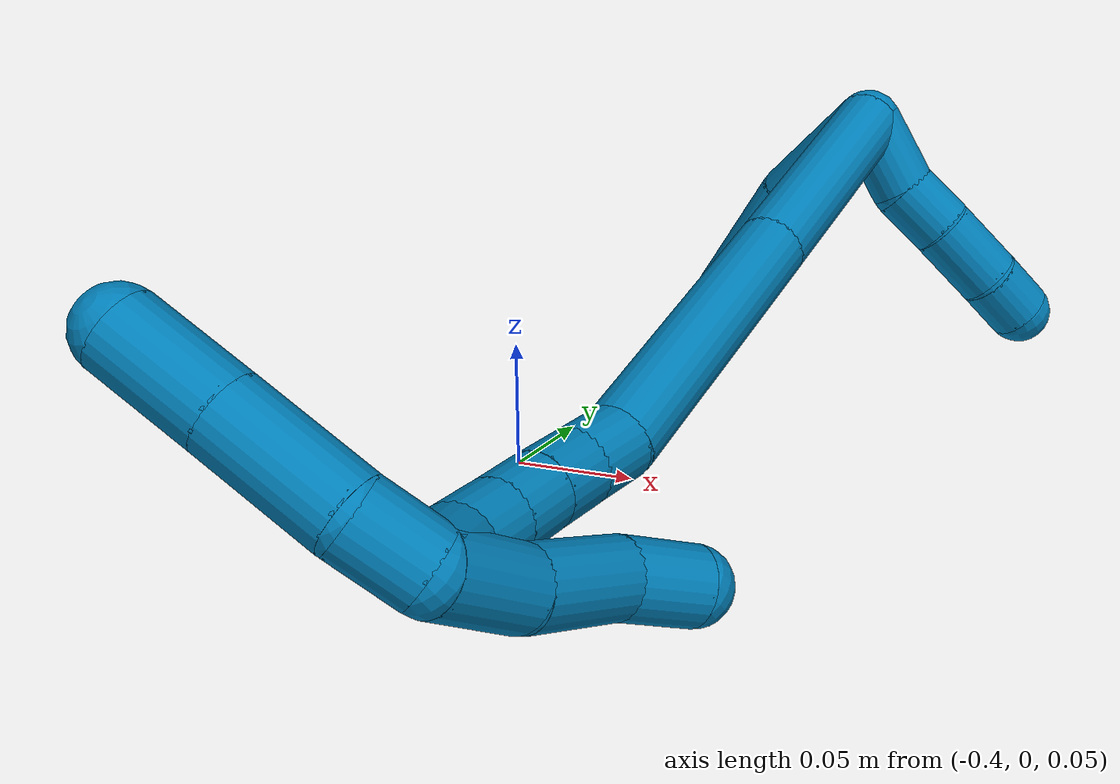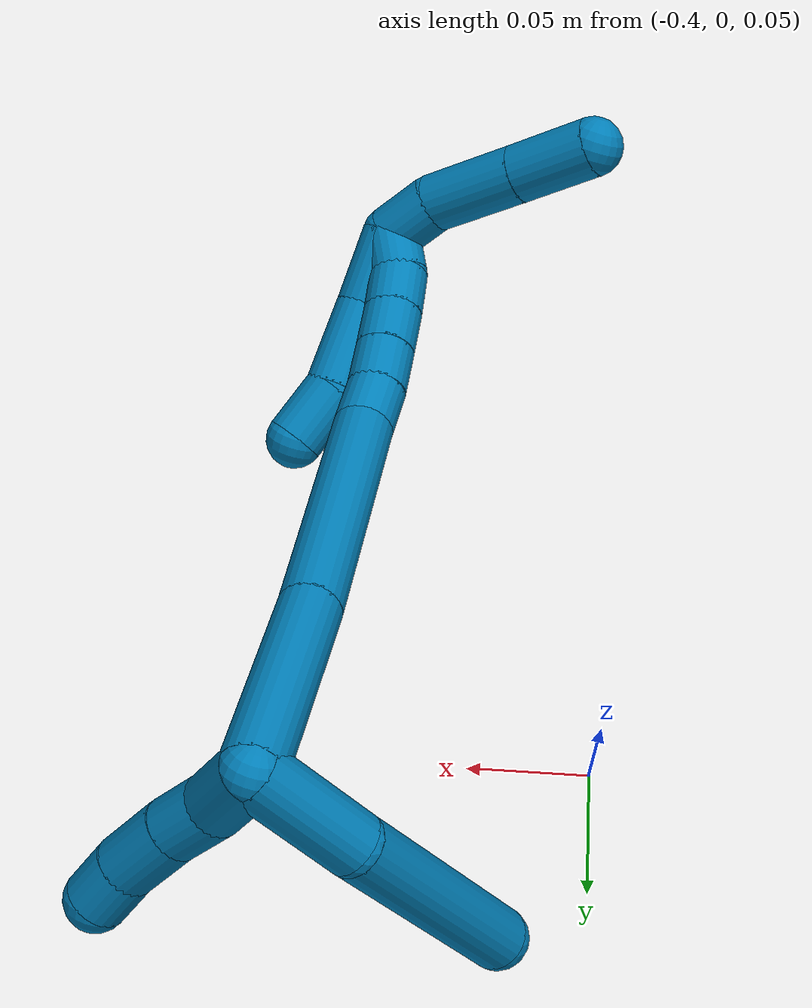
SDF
<sdf version="1.7">
 <world name="default">
  <model name="9">
   <static>0</static>
   <link name="9">
    <collision name="collision-cylinder-e_1_2_8">
     <pose>-0.019266 0.010977 -0.011729 -2.38932 -0.87576 1.74013</pose>
     <geometry><cylinder><radius>0.0125</radius><length>0.050169</length></cylinder></geometry>
     <surface>
      <friction><ode><mu>1.16</mu><mu2>1.16</mu2><slip1>0</slip1><slip2>0</slip2></ode></friction>
      <contact><ode><kp>1e+06</kp><kd>1</kd><max_vel>0</max_vel><min_depth>0.001</min_depth></ode></contact>
     </surface>
    </collision>
    <visual name="visual-cylinder-e_1_2_8">
     <pose>-0.019266 0.010977 -0.011729 -2.38932 -0.87576 1.74013</pose>
     <geometry><cylinder><radius>0.0125</radius><length>0.050169</length></cylinder></geometry>
     <material><ambient>0 0.490196 0.709804 1</ambient></material>
    </visual>
    <collision name="collision-cylinder-e_2_8_6">
     <pose>-0.080796 0.029187 -0.049011 -2.86574 -1.0098 2.64946</pose>
     <geometry><cylinder><radius>0.0125</radius><length>0.099831</length></cylinder></geometry>
     <surface>
      <friction><ode><mu>1.16</mu><mu2>1.16</mu2><slip1>0</slip1><slip2>0</slip2></ode></friction>
      <contact><ode><kp>1e+06</kp><kd>1</kd><max_vel>0</max_vel><min_depth>0.001</min_depth></ode></contact>
     </surface>
    </collision>
    <visual name="visual-cylinder-e_2_8_6">
     <pose>-0.080796 0.029187 -0.049011 -2.86574 -1.0098 2.64946</pose>
     <geometry><cylinder><radius>0.0125</radius><length>0.099831</length></cylinder></geometry>
     <material><ambient>0 0.490196 0.709804 1</ambient></material>
    </visual>
    <collision name="collision-cylinder-e_1_2_9">
     <pose>-0.002313 -0.008014 -0.012148 2.55842 -0.157627 -0.514604</pose>
     <geometry><cylinder><radius>0.0125</radius><length>0.029471</length></cylinder></geometry>
     <surface>
      <friction><ode><mu>1.16</mu><mu2>1.16</mu2><slip1>0</slip1><slip2>0</slip2></ode></friction>
      <contact><ode><kp>1e+06</kp><kd>1</kd><max_vel>0</max_vel><min_depth>0.001</min_depth></ode></contact>
     </surface>
    </collision>
    <visual name="visual-cylinder-e_1_2_9">
     <pose>-0.002313 -0.008014 -0.012148 2.55842 -0.157627 -0.514604</pose>
     <geometry><cylinder><radius>0.0125</radius><length>0.029471</length></cylinder></geometry>
     <material><ambient>0 0.490196 0.709804 1</ambient></material>
    </visual>
    <collision name="collision-cylinder-e_2_9_10">
     <pose>-0.003151 -0.022283 -0.033145 2.52633 0.135285 0.420163</pose>
     <geometry><cylinder><radius>0.0125</radius><length>0.021875</length></cylinder></geometry>
     <surface>
      <friction><ode><mu>1.16</mu><mu2>1.16</mu2><slip1>0</slip1><slip2>0</slip2></ode></friction>
      <contact><ode><kp>1e+06</kp><kd>1</kd><max_vel>0</max_vel><min_depth>0.001</min_depth></ode></contact>
     </surface>
    </collision>
    <visual name="visual-cylinder-e_2_9_10">
     <pose>-0.003151 -0.022283 -0.033145 2.52633 0.135285 0.420163</pose>
     <geometry><cylinder><radius>0.0125</radius><length>0.021875</length></cylinder></geometry>
     <material><ambient>0 0.490196 0.709804 1</ambient></material>
    </visual>
    <collision name="collision-cylinder-e_3_10_11">
     <pose>1.3e-05 -0.035521 -0.05419 2.62154 0.119639 0.442838</pose>
     <geometry><cylinder><radius>0.0125</radius><length>0.028307</length></cylinder></geometry>
     <surface>
      <friction><ode><mu>1.16</mu><mu2>1.16</mu2><slip1>0</slip1><slip2>0</slip2></ode></friction>
      <contact><ode><kp>1e+06</kp><kd>1</kd><max_vel>0</max_vel><min_depth>0.001</min_depth></ode></contact>
     </surface>
    </collision>
    <visual name="visual-cylinder-e_3_10_11">
     <pose>1.3e-05 -0.035521 -0.05419 2.62154 0.119639 0.442838</pose>
     <geometry><cylinder><radius>0.0125</radius><length>0.028307</length></cylinder></geometry>
     <material><ambient>0 0.490196 0.709804 1</ambient></material>
    </visual>
    <collision name="collision-cylinder-e_4_11_5">
     <pose>0.002957 -0.04615 -0.075799 2.77214 0.123568 0.639432</pose>
     <geometry><cylinder><radius>0.0125</radius><length>0.020347</length></cylinder></geometry>
     <surface>
      <friction><ode><mu>1.16</mu><mu2>1.16</mu2><slip1>0</slip1><slip2>0</slip2></ode></friction>
      <contact><ode><kp>1e+06</kp><kd>1</kd><max_vel>0</max_vel><min_depth>0.001</min_depth></ode></contact>
     </surface>
    </collision>
    <visual name="visual-cylinder-e_4_11_5">
     <pose>0.002957 -0.04615 -0.075799 2.77214 0.123568 0.639432</pose>
     <geometry><cylinder><radius>0.0125</radius><length>0.020347</length></cylinder></geometry>
     <material><ambient>0 0.490196 0.709804 1</ambient></material>
    </visual>
    <collision name="collision-cylinder-e_1_2_12">
     <pose>-0.032289 -0.026379 0.013438 1.09965 -0.828733 -0.526598</pose>
     <geometry><cylinder><radius>0.0125</radius><length>0.087613</length></cylinder></geometry>
     <surface>
      <friction><ode><mu>1.16</mu><mu2>1.16</mu2><slip1>0</slip1><slip2>0</slip2></ode></friction>
      <contact><ode><kp>1e+06</kp><kd>1</kd><max_vel>0</max_vel><min_depth>0.001</min_depth></ode></contact>
     </surface>
    </collision>
    <visual name="visual-cylinder-e_1_2_12">
     <pose>-0.032289 -0.026379 0.013438 1.09965 -0.828733 -0.526598</pose>
     <geometry><cylinder><radius>0.0125</radius><length>0.087613</length></cylinder></geometry>
     <material><ambient>0 0.490196 0.709804 1</ambient></material>
    </visual>
    <collision name="collision-cylinder-e_2_12_13">
     <pose>-0.103836 -0.087665 0.046062 1.06822 -0.778154 -0.475779</pose>
     <geometry><cylinder><radius>0.0125</radius><length>0.111855</length></cylinder></geometry>
     <surface>
      <friction><ode><mu>1.16</mu><mu2>1.16</mu2><slip1>0</slip1><slip2>0</slip2></ode></friction>
      <contact><ode><kp>1e+06</kp><kd>1</kd><max_vel>0</max_vel><min_depth>0.001</min_depth></ode></contact>
     </surface>
    </collision>
    <visual name="visual-cylinder-e_2_12_13">
     <pose>-0.103836 -0.087665 0.046062 1.06822 -0.778154 -0.475779</pose>
     <geometry><cylinder><radius>0.0125</radius><length>0.111855</length></cylinder></geometry>
     <material><ambient>0 0.490196 0.709804 1</ambient></material>
    </visual>
    <collision name="collision-cylinder-e_3_13_14">
     <pose>-0.149512 -0.127787 0.071317 0.709916 -0.675894 -0.25906</pose>
     <geometry><cylinder><radius>0.0125</radius><length>0.020513</length></cylinder></geometry>
     <surface>
      <friction><ode><mu>1.16</mu><mu2>1.16</mu2><slip1>0</slip1><slip2>0</slip2></ode></friction>
      <contact><ode><kp>1e+06</kp><kd>1</kd><max_vel>0</max_vel><min_depth>0.001</min_depth></ode></contact>
     </surface>
    </collision>
    <visual name="visual-cylinder-e_3_13_14">
     <pose>-0.149512 -0.127787 0.071317 0.709916 -0.675894 -0.25906</pose>
     <geometry><cylinder><radius>0.0125</radius><length>0.020513</length></cylinder></geometry>
     <material><ambient>0 0.490196 0.709804 1</ambient></material>
    </visual>
    <collision name="collision-cylinder-e_4_14_15">
     <pose>-0.161333 -0.138645 0.083639 0.734132 -0.570567 -0.224581</pose>
     <geometry><cylinder><radius>0.0125</radius><length>0.020016</length></cylinder></geometry>
     <surface>
      <friction><ode><mu>1.16</mu><mu2>1.16</mu2><slip1>0</slip1><slip2>0</slip2></ode></friction>
      <contact><ode><kp>1e+06</kp><kd>1</kd><max_vel>0</max_vel><min_depth>0.001</min_depth></ode></contact>
     </surface>
    </collision>
    <visual name="visual-cylinder-e_4_14_15">
     <pose>-0.161333 -0.138645 0.083639 0.734132 -0.570567 -0.224581</pose>
     <geometry><cylinder><radius>0.0125</radius><length>0.020016</length></cylinder></geometry>
     <material><ambient>0 0.490196 0.709804 1</ambient></material>
    </visual>
    <collision name="collision-cylinder-e_5_15_16">
     <pose>-0.172179 -0.150057 0.095985 0.7581 -0.575144 -0.234536</pose>
     <geometry><cylinder><radius>0.0125</radius><length>0.020001</length></cylinder></geometry>
     <surface>
      <friction><ode><mu>1.16</mu><mu2>1.16</mu2><slip1>0</slip1><slip2>0</slip2></ode></friction>
      <contact><ode><kp>1e+06</kp><kd>1</kd><max_vel>0</max_vel><min_depth>0.001</min_depth></ode></contact>
     </surface>
    </collision>
    <visual name="visual-cylinder-e_5_15_16">
     <pose>-0.172179 -0.150057 0.095985 0.7581 -0.575144 -0.234536</pose>
     <geometry><cylinder><radius>0.0125</radius><length>0.020001</length></cylinder></geometry>
     <material><ambient>0 0.490196 0.709804 1</ambient></material>
    </visual>
    <collision name="collision-cylinder-e_6_16_17">
     <pose>-0.182564 -0.161763 0.108429 0.751784 -0.517261 -0.208064</pose>
     <geometry><cylinder><radius>0.0125</radius><length>0.020002</length></cylinder></geometry>
     <surface>
      <friction><ode><mu>1.16</mu><mu2>1.16</mu2><slip1>0</slip1><slip2>0</slip2></ode></friction>
      <contact><ode><kp>1e+06</kp><kd>1</kd><max_vel>0</max_vel><min_depth>0.001</min_depth></ode></contact>
     </surface>
    </collision>
    <visual name="visual-cylinder-e_6_16_17">
     <pose>-0.182564 -0.161763 0.108429 0.751784 -0.517261 -0.208064</pose>
     <geometry><cylinder><radius>0.0125</radius><length>0.020002</length></cylinder></geometry>
     <material><ambient>0 0.490196 0.709804 1</ambient></material>
    </visual>
    <collision name="collision-cylinder-e_7_17_1">
     <pose>-0.189569 -0.175029 0.121262 0.846551 -0.207462 -0.093731</pose>
     <geometry><cylinder><radius>0.0125</radius><length>0.020001</length></cylinder></geometry>
     <surface>
      <friction><ode><mu>1.16</mu><mu2>1.16</mu2><slip1>0</slip1><slip2>0</slip2></ode></friction>
      <contact><ode><kp>1e+06</kp><kd>1</kd><max_vel>0</max_vel><min_depth>0.001</min_depth></ode></contact>
     </surface>
    </collision>
    <visual name="visual-cylinder-e_7_17_1">
     <pose>-0.189569 -0.175029 0.121262 0.846551 -0.207462 -0.093731</pose>
     <geometry><cylinder><radius>0.0125</radius><length>0.020001</length></cylinder></geometry>
     <material><ambient>0 0.490196 0.709804 1</ambient></material>
    </visual>
    <collision name="collision-cylinder-e_1_1_18">
     <pose>-0.186762 -0.179146 0.11193 -2.94118 0.292869 -1.94493</pose>
     <geometry><cylinder><radius>0.0125</radius><length>0.033715</length></cylinder></geometry>
     <surface>
      <friction><ode><mu>1.16</mu><mu2>1.16</mu2><slip1>0</slip1><slip2>0</slip2></ode></friction>
      <contact><ode><kp>1e+06</kp><kd>1</kd><max_vel>0</max_vel><min_depth>0.001</min_depth></ode></contact>
     </surface>
    </collision>
    <visual name="visual-cylinder-e_1_1_18">
     <pose>-0.186762 -0.179146 0.11193 -2.94118 0.292869 -1.94493</pose>
     <geometry><cylinder><radius>0.0125</radius><length>0.033715</length></cylinder></geometry>
     <material><ambient>0 0.490196 0.709804 1</ambient></material>
    </visual>
    <collision name="collision-cylinder-e_2_18_19">
     <pose>-0.173245 -0.1699 0.079652 -2.79027 0.458371 -1.84078</pose>
     <geometry><cylinder><radius>0.0125</radius><length>0.0391</length></cylinder></geometry>
     <surface>
      <friction><ode><mu>1.16</mu><mu2>1.16</mu2><slip1>0</slip1><slip2>0</slip2></ode></friction>
      <contact><ode><kp>1e+06</kp><kd>1</kd><max_vel>0</max_vel><min_depth>0.001</min_depth></ode></contact>
     </surface>
    </collision>
    <visual name="visual-cylinder-e_2_18_19">
     <pose>-0.173245 -0.1699 0.079652 -2.79027 0.458371 -1.84078</pose>
     <geometry><cylinder><radius>0.0125</radius><length>0.0391</length></cylinder></geometry>
     <material><ambient>0 0.490196 0.709804 1</ambient></material>
    </visual>
    <collision name="collision-cylinder-e_3_19_4">
     <pose>-0.157547 -0.163955 0.051568 3.13394 0.545064 3.1142</pose>
     <geometry><cylinder><radius>0.0125</radius><length>0.027185</length></cylinder></geometry>
     <surface>
      <friction><ode><mu>1.16</mu><mu2>1.16</mu2><slip1>0</slip1><slip2>0</slip2></ode></friction>
      <contact><ode><kp>1e+06</kp><kd>1</kd><max_vel>0</max_vel><min_depth>0.001</min_depth></ode></contact>
     </surface>
    </collision>
    <visual name="visual-cylinder-e_3_19_4">
     <pose>-0.157547 -0.163955 0.051568 3.13394 0.545064 3.1142</pose>
     <geometry><cylinder><radius>0.0125</radius><length>0.027185</length></cylinder></geometry>
     <material><ambient>0 0.490196 0.709804 1</ambient></material>
    </visual>
    <collision name="collision-cylinder-e_1_1_20">
     <pose>-0.194842 -0.176139 0.137444 -0.570291 -0.271929 0.080163</pose>
     <geometry><cylinder><radius>0.0125</radius><length>0.02392</length></cylinder></geometry>
     <surface>
      <friction><ode><mu>1.16</mu><mu2>1.16</mu2><slip1>0</slip1><slip2>0</slip2></ode></friction>
      <contact><ode><kp>1e+06</kp><kd>1</kd><max_vel>0</max_vel><min_depth>0.001</min_depth></ode></contact>
     </surface>
    </collision>
    <visual name="visual-cylinder-e_1_1_20">
     <pose>-0.194842 -0.176139 0.137444 -0.570291 -0.271929 0.080163</pose>
     <geometry><cylinder><radius>0.0125</radius><length>0.02392</length></cylinder></geometry>
     <material><ambient>0 0.490196 0.709804 1</ambient></material>
    </visual>
    <collision name="collision-cylinder-e_2_20_21">
     <pose>-0.203365 -0.154578 0.159787 -0.881414 -0.261058 0.123673</pose>
     <geometry><cylinder><radius>0.0125</radius><length>0.041157</length></cylinder></geometry>
     <surface>
      <friction><ode><mu>1.16</mu><mu2>1.16</mu2><slip1>0</slip1><slip2>0</slip2></ode></friction>
      <contact><ode><kp>1e+06</kp><kd>1</kd><max_vel>0</max_vel><min_depth>0.001</min_depth></ode></contact>
     </surface>
    </collision>
    <visual name="visual-cylinder-e_2_20_21">
     <pose>-0.203365 -0.154578 0.159787 -0.881414 -0.261058 0.123673</pose>
     <geometry><cylinder><radius>0.0125</radius><length>0.041157</length></cylinder></geometry>
     <material><ambient>0 0.490196 0.709804 1</ambient></material>
    </visual>
    <collision name="collision-cylinder-e_3_21_3">
     <pose>-0.213269 -0.126341 0.183272 -0.871809 -0.26614 0.124541</pose>
     <geometry><cylinder><radius>0.0125</radius><length>0.034923</length></cylinder></geometry>
     <surface>
      <friction><ode><mu>1.16</mu><mu2>1.16</mu2><slip1>0</slip1><slip2>0</slip2></ode></friction>
      <contact><ode><kp>1e+06</kp><kd>1</kd><max_vel>0</max_vel><min_depth>0.001</min_depth></ode></contact>
     </surface>
    </collision>
    <visual name="visual-cylinder-e_3_21_3">
     <pose>-0.213269 -0.126341 0.183272 -0.871809 -0.26614 0.124541</pose>
     <geometry><cylinder><radius>0.0125</radius><length>0.034923</length></cylinder></geometry>
     <material><ambient>0 0.490196 0.709804 1</ambient></material>
    </visual>
    <collision name="collision-sphere-3">
     <pose>-0.217862 -0.113445 0.194112 0 -0 0</pose>
     <geometry><sphere><radius>0.0125</radius></sphere></geometry>
     <surface>
      <friction><ode><mu>1.16</mu><mu2>1.16</mu2><slip1>0</slip1><slip2>0</slip2></ode></friction>
      <contact><ode><kp>1e+06</kp><kd>1</kd><max_vel>0</max_vel><min_depth>0.001</min_depth></ode></contact>
     </surface>
    </collision>
    <visual name="visual-sphere-3">
     <pose>-0.217862 -0.113445 0.194112 0 -0 0</pose>
     <geometry><sphere><radius>0.0125</radius></sphere></geometry>
     <material><ambient>0 0.490196 0.709804 1</ambient></material>
    </visual>
    <collision name="collision-sphere-21">
     <pose>-0.208677 -0.139237 0.172433 0 -0 0</pose>
     <geometry><sphere><radius>0.0125</radius></sphere></geometry>
     <surface>
      <friction><ode><mu>1.16</mu><mu2>1.16</mu2><slip1>0</slip1><slip2>0</slip2></ode></friction>
      <contact><ode><kp>1e+06</kp><kd>1</kd><max_vel>0</max_vel><min_depth>0.001</min_depth></ode></contact>
     </surface>
    </collision>
    <visual name="visual-sphere-21">
     <pose>-0.208677 -0.139237 0.172433 0 -0 0</pose>
     <geometry><sphere><radius>0.0125</radius></sphere></geometry>
     <material><ambient>0 0.490196 0.709804 1</ambient></material>
    </visual>
    <collision name="collision-sphere-20">
     <pose>-0.198054 -0.16992 0.147141 0 -0 0</pose>
     <geometry><sphere><radius>0.0125</radius></sphere></geometry>
     <surface>
      <friction><ode><mu>1.16</mu><mu2>1.16</mu2><slip1>0</slip1><slip2>0</slip2></ode></friction>
      <contact><ode><kp>1e+06</kp><kd>1</kd><max_vel>0</max_vel><min_depth>0.001</min_depth></ode></contact>
     </surface>
    </collision>
    <visual name="visual-sphere-20">
     <pose>-0.198054 -0.16992 0.147141 0 -0 0</pose>
     <geometry><sphere><radius>0.0125</radius></sphere></geometry>
     <material><ambient>0 0.490196 0.709804 1</ambient></material>
    </visual>
    <collision name="collision-sphere-4">
     <pose>-0.1505 -0.164044 0.039946 0 -0 0</pose>
     <geometry><sphere><radius>0.0125</radius></sphere></geometry>
     <surface>
      <friction><ode><mu>1.16</mu><mu2>1.16</mu2><slip1>0</slip1><slip2>0</slip2></ode></friction>
      <contact><ode><kp>1e+06</kp><kd>1</kd><max_vel>0</max_vel><min_depth>0.001</min_depth></ode></contact>
     </surface>
    </collision>
    <visual name="visual-sphere-4">
     <pose>-0.1505 -0.164044 0.039946 0 -0 0</pose>
     <geometry><sphere><radius>0.0125</radius></sphere></geometry>
     <material><ambient>0 0.490196 0.709804 1</ambient></material>
    </visual>
    <collision name="collision-sphere-11">
     <pose>0.001703 -0.042504 -0.066384 0 -0 0</pose>
     <geometry><sphere><radius>0.0125</radius></sphere></geometry>
     <surface>
      <friction><ode><mu>1.16</mu><mu2>1.16</mu2><slip1>0</slip1><slip2>0</slip2></ode></friction>
      <contact><ode><kp>1e+06</kp><kd>1</kd><max_vel>0</max_vel><min_depth>0.001</min_depth></ode></contact>
     </surface>
    </collision>
    <visual name="visual-sphere-11">
     <pose>0.001703 -0.042504 -0.066384 0 -0 0</pose>
     <geometry><sphere><radius>0.0125</radius></sphere></geometry>
     <material><ambient>0 0.490196 0.709804 1</ambient></material>
    </visual>
    <collision name="collision-sphere-10">
     <pose>-0.001676 -0.028538 -0.041996 0 -0 0</pose>
     <geometry><sphere><radius>0.0125</radius></sphere></geometry>
     <surface>
      <friction><ode><mu>1.16</mu><mu2>1.16</mu2><slip1>0</slip1><slip2>0</slip2></ode></friction>
      <contact><ode><kp>1e+06</kp><kd>1</kd><max_vel>0</max_vel><min_depth>0.001</min_depth></ode></contact>
     </surface>
    </collision>
    <visual name="visual-sphere-10">
     <pose>-0.001676 -0.028538 -0.041996 0 -0 0</pose>
     <geometry><sphere><radius>0.0125</radius></sphere></geometry>
     <material><ambient>0 0.490196 0.709804 1</ambient></material>
    </visual>
    <collision name="collision-sphere-6">
     <pose>-0.123061 0.03642 -0.074564 0 -0 0</pose>
     <geometry><sphere><radius>0.0125</radius></sphere></geometry>
     <surface>
      <friction><ode><mu>1.16</mu><mu2>1.16</mu2><slip1>0</slip1><slip2>0</slip2></ode></friction>
      <contact><ode><kp>1e+06</kp><kd>1</kd><max_vel>0</max_vel><min_depth>0.001</min_depth></ode></contact>
     </surface>
    </collision>
    <visual name="visual-sphere-6">
     <pose>-0.123061 0.03642 -0.074564 0 -0 0</pose>
     <geometry><sphere><radius>0.0125</radius></sphere></geometry>
     <material><ambient>0 0.490196 0.709804 1</ambient></material>
    </visual>
    <collision name="collision-sphere-9">
     <pose>-0.004626 -0.016028 -0.024295 0 -0 0</pose>
     <geometry><sphere><radius>0.0125</radius></sphere></geometry>
     <surface>
      <friction><ode><mu>1.16</mu><mu2>1.16</mu2><slip1>0</slip1><slip2>0</slip2></ode></friction>
      <contact><ode><kp>1e+06</kp><kd>1</kd><max_vel>0</max_vel><min_depth>0.001</min_depth></ode></contact>
     </surface>
    </collision>
    <visual name="visual-sphere-9">
     <pose>-0.004626 -0.016028 -0.024295 0 -0 0</pose>
     <geometry><sphere><radius>0.0125</radius></sphere></geometry>
     <material><ambient>0 0.490196 0.709804 1</ambient></material>
    </visual>
    <collision name="collision-sphere-2">
     <geometry><sphere><radius>0.0125</radius></sphere></geometry>
     <surface>
      <friction><ode><mu>1.16</mu><mu2>1.16</mu2><slip1>0</slip1><slip2>0</slip2></ode></friction>
      <contact><ode><kp>1e+06</kp><kd>1</kd><max_vel>0</max_vel><min_depth>0.001</min_depth></ode></contact>
     </surface>
    </collision>
    <visual name="visual-sphere-2">
     <geometry><sphere><radius>0.0125</radius></sphere></geometry>
     <material><ambient>0 0.490196 0.709804 1</ambient></material>
    </visual>
    <collision name="collision-sphere-19">
     <pose>-0.164594 -0.163866 0.06319 0 -0 0</pose>
     <geometry><sphere><radius>0.0125</radius></sphere></geometry>
     <surface>
      <friction><ode><mu>1.16</mu><mu2>1.16</mu2><slip1>0</slip1><slip2>0</slip2></ode></friction>
      <contact><ode><kp>1e+06</kp><kd>1</kd><max_vel>0</max_vel><min_depth>0.001</min_depth></ode></contact>
     </surface>
    </collision>
    <visual name="visual-sphere-19">
     <pose>-0.164594 -0.163866 0.06319 0 -0 0</pose>
     <geometry><sphere><radius>0.0125</radius></sphere></geometry>
     <material><ambient>0 0.490196 0.709804 1</ambient></material>
    </visual>
    <collision name="collision-sphere-8">
     <pose>-0.038531 0.021953 -0.023458 0 -0 0</pose>
     <geometry><sphere><radius>0.0125</radius></sphere></geometry>
     <surface>
      <friction><ode><mu>1.16</mu><mu2>1.16</mu2><slip1>0</slip1><slip2>0</slip2></ode></friction>
      <contact><ode><kp>1e+06</kp><kd>1</kd><max_vel>0</max_vel><min_depth>0.001</min_depth></ode></contact>
     </surface>
    </collision>
    <visual name="visual-sphere-8">
     <pose>-0.038531 0.021953 -0.023458 0 -0 0</pose>
     <geometry><sphere><radius>0.0125</radius></sphere></geometry>
     <material><ambient>0 0.490196 0.709804 1</ambient></material>
    </visual>
    <collision name="collision-sphere-5">
     <pose>0.004211 -0.049795 -0.085214 0 -0 0</pose>
     <geometry><sphere><radius>0.0125</radius></sphere></geometry>
     <surface>
      <friction><ode><mu>1.16</mu><mu2>1.16</mu2><slip1>0</slip1><slip2>0</slip2></ode></friction>
      <contact><ode><kp>1e+06</kp><kd>1</kd><max_vel>0</max_vel><min_depth>0.001</min_depth></ode></contact>
     </surface>
    </collision>
    <visual name="visual-sphere-5">
     <pose>0.004211 -0.049795 -0.085214 0 -0 0</pose>
     <geometry><sphere><radius>0.0125</radius></sphere></geometry>
     <material><ambient>0 0.490196 0.709804 1</ambient></material>
    </visual>
    <collision name="collision-sphere-12">
     <pose>-0.064577 -0.052758 0.026876 0 -0 0</pose>
     <geometry><sphere><radius>0.0125</radius></sphere></geometry>
     <surface>
      <friction><ode><mu>1.16</mu><mu2>1.16</mu2><slip1>0</slip1><slip2>0</slip2></ode></friction>
      <contact><ode><kp>1e+06</kp><kd>1</kd><max_vel>0</max_vel><min_depth>0.001</min_depth></ode></contact>
     </surface>
    </collision>
    <visual name="visual-sphere-12">
     <pose>-0.064577 -0.052758 0.026876 0 -0 0</pose>
     <geometry><sphere><radius>0.0125</radius></sphere></geometry>
     <material><ambient>0 0.490196 0.709804 1</ambient></material>
    </visual>
    <collision name="collision-sphere-13">
     <pose>-0.143095 -0.122572 0.065249 0 -0 0</pose>
     <geometry><sphere><radius>0.0125</radius></sphere></geometry>
     <surface>
      <friction><ode><mu>1.16</mu><mu2>1.16</mu2><slip1>0</slip1><slip2>0</slip2></ode></friction>
      <contact><ode><kp>1e+06</kp><kd>1</kd><max_vel>0</max_vel><min_depth>0.001</min_depth></ode></contact>
     </surface>
    </collision>
    <visual name="visual-sphere-13">
     <pose>-0.143095 -0.122572 0.065249 0 -0 0</pose>
     <geometry><sphere><radius>0.0125</radius></sphere></geometry>
     <material><ambient>0 0.490196 0.709804 1</ambient></material>
    </visual>
    <collision name="collision-sphere-14">
     <pose>-0.155928 -0.133002 0.077386 0 -0 0</pose>
     <geometry><sphere><radius>0.0125</radius></sphere></geometry>
     <surface>
      <friction><ode><mu>1.16</mu><mu2>1.16</mu2><slip1>0</slip1><slip2>0</slip2></ode></friction>
      <contact><ode><kp>1e+06</kp><kd>1</kd><max_vel>0</max_vel><min_depth>0.001</min_depth></ode></contact>
     </surface>
    </collision>
    <visual name="visual-sphere-14">
     <pose>-0.155928 -0.133002 0.077386 0 -0 0</pose>
     <geometry><sphere><radius>0.0125</radius></sphere></geometry>
     <material><ambient>0 0.490196 0.709804 1</ambient></material>
    </visual>
    <collision name="collision-sphere-15">
     <pose>-0.166739 -0.144288 0.089892 0 -0 0</pose>
     <geometry><sphere><radius>0.0125</radius></sphere></geometry>
     <surface>
      <friction><ode><mu>1.16</mu><mu2>1.16</mu2><slip1>0</slip1><slip2>0</slip2></ode></friction>
      <contact><ode><kp>1e+06</kp><kd>1</kd><max_vel>0</max_vel><min_depth>0.001</min_depth></ode></contact>
     </surface>
    </collision>
    <visual name="visual-sphere-15">
     <pose>-0.166739 -0.144288 0.089892 0 -0 0</pose>
     <geometry><sphere><radius>0.0125</radius></sphere></geometry>
     <material><ambient>0 0.490196 0.709804 1</ambient></material>
    </visual>
    <collision name="collision-sphere-16">
     <pose>-0.177618 -0.155827 0.102079 0 -0 0</pose>
     <geometry><sphere><radius>0.0125</radius></sphere></geometry>
     <surface>
      <friction><ode><mu>1.16</mu><mu2>1.16</mu2><slip1>0</slip1><slip2>0</slip2></ode></friction>
      <contact><ode><kp>1e+06</kp><kd>1</kd><max_vel>0</max_vel><min_depth>0.001</min_depth></ode></contact>
     </surface>
    </collision>
    <visual name="visual-sphere-16">
     <pose>-0.177618 -0.155827 0.102079 0 -0 0</pose>
     <geometry><sphere><radius>0.0125</radius></sphere></geometry>
     <material><ambient>0 0.490196 0.709804 1</ambient></material>
    </visual>
    <collision name="collision-sphere-17">
     <pose>-0.187509 -0.1677 0.114778 0 -0 0</pose>
     <geometry><sphere><radius>0.0125</radius></sphere></geometry>
     <surface>
      <friction><ode><mu>1.16</mu><mu2>1.16</mu2><slip1>0</slip1><slip2>0</slip2></ode></friction>
      <contact><ode><kp>1e+06</kp><kd>1</kd><max_vel>0</max_vel><min_depth>0.001</min_depth></ode></contact>
     </surface>
    </collision>
    <visual name="visual-sphere-17">
     <pose>-0.187509 -0.1677 0.114778 0 -0 0</pose>
     <geometry><sphere><radius>0.0125</radius></sphere></geometry>
     <material><ambient>0 0.490196 0.709804 1</ambient></material>
    </visual>
    <collision name="collision-sphere-1">
     <pose>-0.191629 -0.182359 0.127746 0 -0 0</pose>
     <geometry><sphere><radius>0.0125</radius></sphere></geometry>
     <surface>
      <friction><ode><mu>1.16</mu><mu2>1.16</mu2><slip1>0</slip1><slip2>0</slip2></ode></friction>
      <contact><ode><kp>1e+06</kp><kd>1</kd><max_vel>0</max_vel><min_depth>0.001</min_depth></ode></contact>
     </surface>
    </collision>
    <visual name="visual-sphere-1">
     <pose>-0.191629 -0.182359 0.127746 0 -0 0</pose>
     <geometry><sphere><radius>0.0125</radius></sphere></geometry>
     <material><ambient>0 0.490196 0.709804 1</ambient></material>
    </visual>
    <collision name="collision-sphere-18">
     <pose>-0.181896 -0.175933 0.096113 0 -0 0</pose>
     <geometry><sphere><radius>0.0125</radius></sphere></geometry>
     <surface>
      <friction><ode><mu>1.16</mu><mu2>1.16</mu2><slip1>0</slip1><slip2>0</slip2></ode></friction>
      <contact><ode><kp>1e+06</kp><kd>1</kd><max_vel>0</max_vel><min_depth>0.001</min_depth></ode></contact>
     </surface>
    </collision>
    <visual name="visual-sphere-18">
     <pose>-0.181896 -0.175933 0.096113 0 -0 0</pose>
     <geometry><sphere><radius>0.0125</radius></sphere></geometry>
     <material><ambient>0 0.490196 0.709804 1</ambient></material>
    </visual>
    <inertial>
     <pose>-0.104757 -0.07811 0.041193 0 -0 0</pose>
     <mass>0.75</mass>
     <inertia>
      <ixx>3.1e-05</ixx>
      <ixy>0</ixy>
      <ixz>0</ixz>
      <iyy>0.000189</iyy>
      <iyz>0</iyz>
      <izz>0.000298</izz>
     </inertia>
    </inertial>
   </link>
   <pose>-0.273627 0.059875 0.188524 0.41152 -0.640634 0.576236</pose>
  </model>
 </world>
</sdf>
